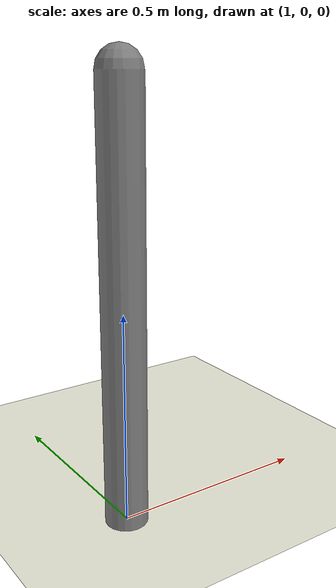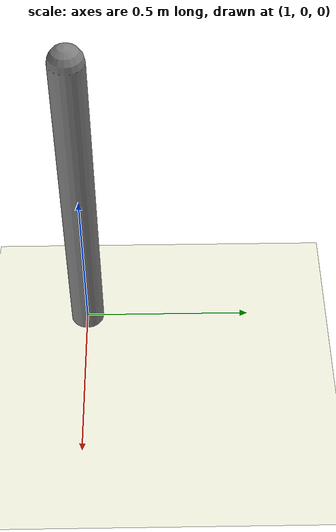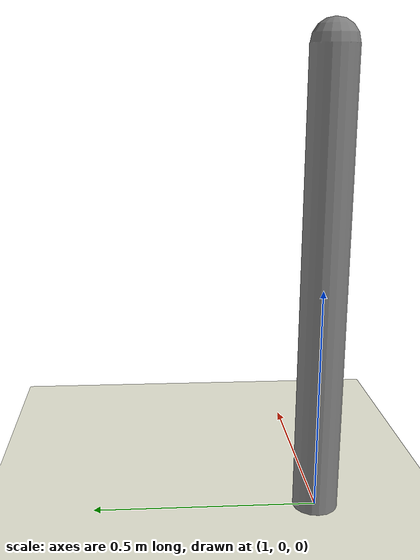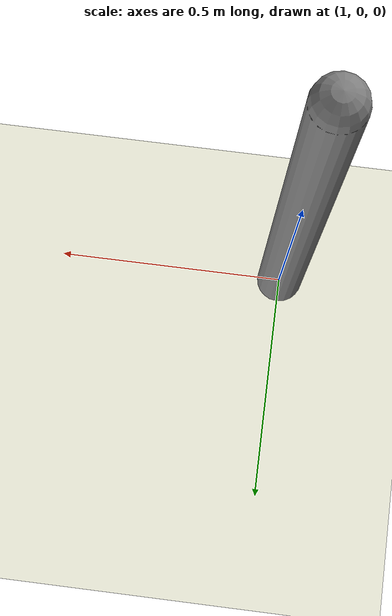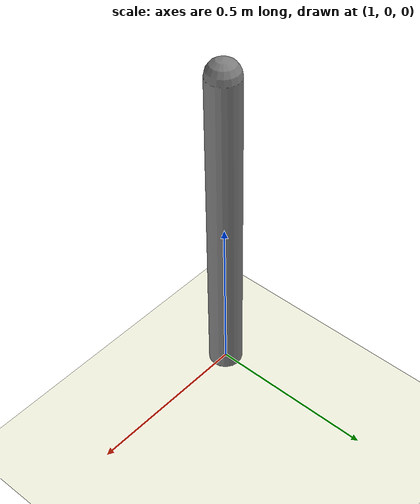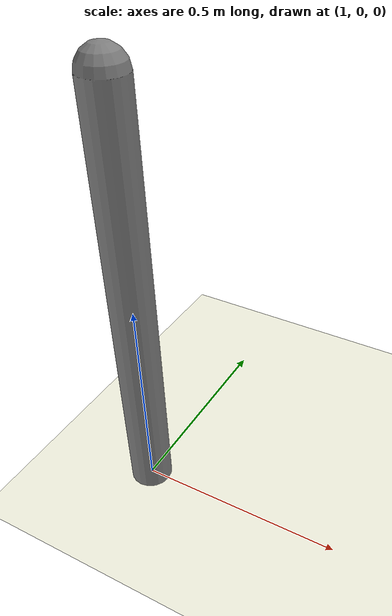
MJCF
<mujoco>
    <option
        gravity="0 0 -.5"
    />
    <worldbody>
        <camera
            name="robot_camera"
            pos="2 -2 2"
        />

        <geom
            type="plane"
            size="5 5 0.1"
            rgba="0.969 0.969 0.898 1"
        />

        <body
            name="arm"
            pos="1 0 0"
        >
            <joint
                name="hinge"
                type="hinge"
                axis="1 0 0"
            />
            <geom
                type="capsule"
                fromto="0 0 0 0 0 1"
                size="0.05"
                density="1000"
            />
        </body>
    </worldbody>

    <actuator>
        <motor
            joint="hinge"
            gear="50" />
    </actuator>

    <sensor>
        <jointpos
            name="arm_angle"
            joint="hinge"
        />
    </sensor>
</mujoco>
